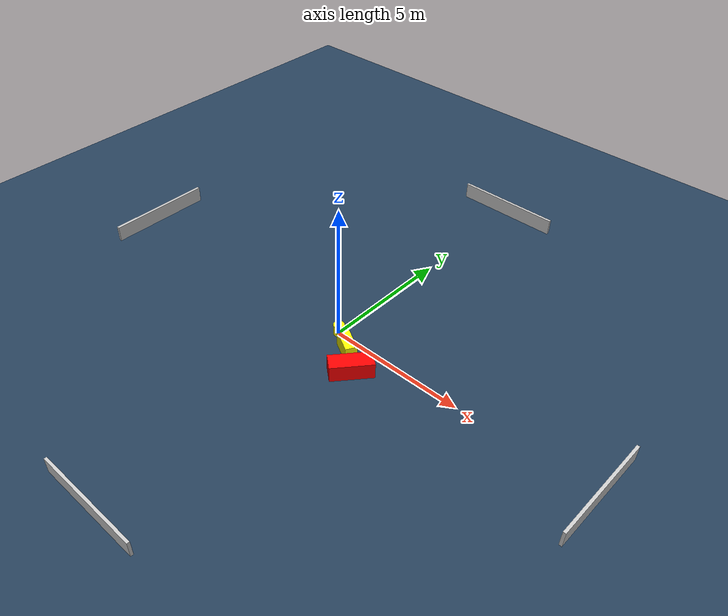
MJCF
<?xml version="1.0" ?>
<mujoco model="generated_environment">
  <option timestep="0.01" integrator="RK4" cone="elliptic"/>
  <default>
    <geom density="1"/>
  </default>
  <asset>
    <texture builtin="gradient" height="3072" name="skybox" rgb1="0.3 0.5 0.7" rgb2="0 0 0" type="skybox" width="512"/>
    <texture builtin="checker" height="300" name="groundplane" rgb1="0.2 0.3 0.4" rgb2="0.1 0.2 0.3" type="2d" width="300"/>
    <material name="groundplane" reflectance="0.2" texrepeat="5 5" texture="groundplane"/>
  </asset>
  <worldbody>
    <light dir="0 0 -1" directional="true" pos="0 0 1.5"/>
    <geom condim="3" friction="0.5 0.005 0.001" material="groundplane" name="floor" pos="0 0 0" size="0 0 0.05" type="plane"/>
    <body name="walls">
      <geom name="wall_1" condim="4" pos="-10.0 0.0 0.3" rgba="0.800000011920929 0.800000011920929 0.800000011920929 1.0" size="0.05 2.0 0.3" type="box"/>
      <geom name="wall_2" condim="4" pos="10.0 0.0 0.3" rgba="0.800000011920929 0.800000011920929 0.800000011920929 1.0" size="0.05 2.0 0.3" type="box"/>
      <geom name="wall_3" condim="4" pos="0.0 -10.0 0.3" rgba="0.800000011920929 0.800000011920929 0.800000011920929 1.0" size="2.0 0.05 0.3" type="box"/>
      <geom name="wall_4" condim="4" pos="0.0 10.0 0.3" rgba="0.800000011920929 0.800000011920929 0.800000011920929 1.0" size="2.0 0.05 0.3" type="box"/>
    </body>
    <body name="robot">
      <joint name="joint_x" type="slide" pos="0 0 0" axis="1 0 0"/>
      <joint name="joint_y" type="slide" pos="0 0 0" axis="0 1 0"/>
      <geom name="robot" type="cylinder" pos="0.0 0.0 0.2" size="0.2 0.2 0.0" mass="5.0" friction="1.0 0.005 0.0001" condim="4" rgba="1.0 1.0 0.0 1.0"/>
    </body>
    <body name="obstacle_1_movable">
      <geom name="obstacle_1_movable" condim="4" pos="0.8194766570148899 -0.4888427091446463 0.3" euler="0 0 150.69919158772316" friction="0.0 0.005 0.001" rgba="1.0 1.0 0.0 1.0" size="0.4886924699186655 0.20462465192133963 0.3" type="box" mass="0.1"/>
      <joint type="free"/>
    </body>
    <body name="obstacle_2_static">
      <geom name="obstacle_2_static" condim="4" pos="1.600989511996864 -1.1233764089824692 0.3" euler="0 0 230.1667147790987" friction="0.0 0.005 0.001" rgba="1.0 0.0 0.0 1.0" size="0.7530148315247678 0.3117924294369451 0.3" type="box"/>
    </body>
  </worldbody>
  <actuator>
    <motor name="actuator_x" joint="joint_x" gear="1" ctrlrange="-1 1"/>
    <motor name="actuator_y" joint="joint_y" gear="1" ctrlrange="-1 1"/>
  </actuator>
</mujoco>
